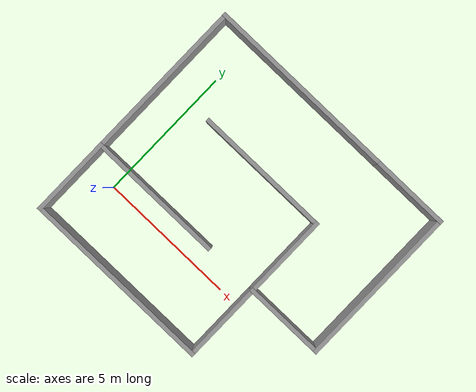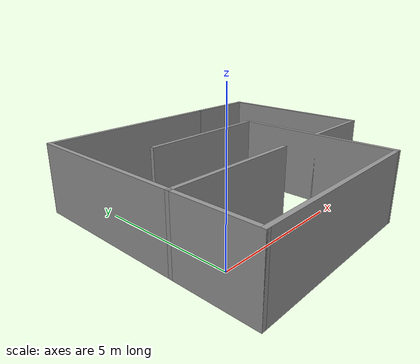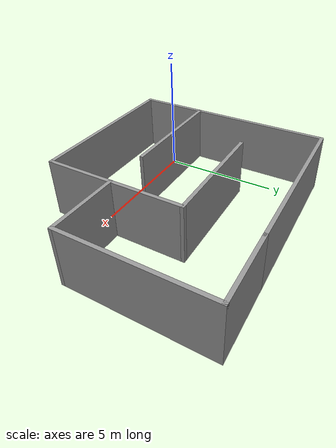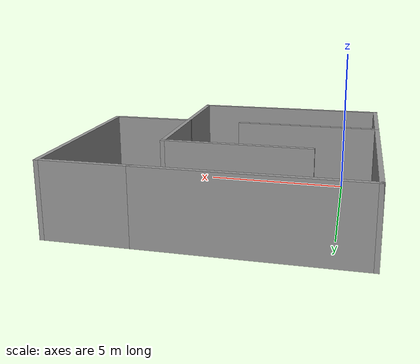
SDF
<?xml version='1.0'?>
<sdf version='1.7'>
  <model name='EgounaWorld'>
    <pose>3.70731 2.32395 0 0 -0 0</pose>
    <link name='Wall_0'>
      <collision name='Wall_0_Collision'>
        <geometry>
          <box>
            <size>3 0.15 2.5</size>
          </box>
        </geometry>
        <pose>0 0 1.25 0 -0 0</pose>
      </collision>
      <visual name='Wall_0_Visual'>
        <pose>0 0 1.25 0 -0 0</pose>
        <geometry>
          <box>
            <size>3 0.15 2.5</size>
          </box>
        </geometry>
        <material>
          <script>
            <uri>file://media/materials/scripts/gazebo.material</uri>
            <name>Gazebo/Grey</name>
          </script>
          <ambient>1 1 1 1</ambient>
        </material>
        <meta>
          <layer>0</layer>
        </meta>
      </visual>
      <pose>-4.85 -2.925 0 0 -0 -1.5708</pose>
    </link>
    <link name='Wall_10'>
      <collision name='Wall_10_Collision'>
        <geometry>
          <box>
            <size>7 0.15 2.5</size>
          </box>
        </geometry>
        <pose>0 0 1.25 0 -0 0</pose>
      </collision>
      <visual name='Wall_10_Visual'>
        <pose>0 0 1.25 0 -0 0</pose>
        <geometry>
          <box>
            <size>7 0.15 2.5</size>
          </box>
        </geometry>
        <material>
          <script>
            <uri>file://media/materials/scripts/gazebo.material</uri>
            <name>Gazebo/Grey</name>
          </script>
          <ambient>1 1 1 1</ambient>
        </material>
        <meta>
          <layer>0</layer>
        </meta>
      </visual>
      <pose>-1.425 4.35 0 0 -0 0</pose>
    </link>
    <link name='Wall_19'>
      <collision name='Wall_19_Collision'>
        <geometry>
          <box>
            <size>3 0.15 2.5</size>
          </box>
        </geometry>
        <pose>0 0 1.25 0 -0 0</pose>
      </collision>
      <visual name='Wall_19_Visual'>
        <pose>0 0 1.25 0 -0 0</pose>
        <geometry>
          <box>
            <size>3 0.15 2.5</size>
          </box>
        </geometry>
        <material>
          <script>
            <uri>file://media/materials/scripts/gazebo.material</uri>
            <name>Gazebo/Grey</name>
          </script>
          <ambient>1 1 1 1</ambient>
        </material>
        <meta>
          <layer>0</layer>
        </meta>
      </visual>
      <pose>3.425 4.35 0 0 -0 0</pose>
    </link>
    <link name='Wall_20'>
      <collision name='Wall_20_Collision'>
        <geometry>
          <box>
            <size>6 0.15 2.5</size>
          </box>
        </geometry>
        <pose>0 0 1.25 0 -0 0</pose>
      </collision>
      <visual name='Wall_20_Visual'>
        <pose>0 0 1.25 0 -0 0</pose>
        <geometry>
          <box>
            <size>6 0.15 2.5</size>
          </box>
        </geometry>
        <material>
          <script>
            <uri>file://media/materials/scripts/gazebo.material</uri>
            <name>Gazebo/Grey</name>
          </script>
          <ambient>1 1 1 1</ambient>
        </material>
        <meta>
          <layer>0</layer>
        </meta>
      </visual>
      <pose>4.85 1.425 0 0 -0 -1.5708</pose>
    </link>
    <link name='Wall_21'>
      <collision name='Wall_21_Collision'>
        <geometry>
          <box>
            <size>3 0.15 2.5</size>
          </box>
        </geometry>
        <pose>0 0 1.25 0 -0 0</pose>
      </collision>
      <visual name='Wall_21_Visual'>
        <pose>0 0 1.25 0 -0 0</pose>
        <geometry>
          <box>
            <size>3 0.15 2.5</size>
          </box>
        </geometry>
        <material>
          <script>
            <uri>file://media/materials/scripts/gazebo.material</uri>
            <name>Gazebo/Grey</name>
          </script>
          <ambient>1 1 1 1</ambient>
        </material>
        <meta>
          <layer>0</layer>
        </meta>
      </visual>
      <pose>3.425 -1.5 0 0 -0 3.14159</pose>
    </link>
    <link name='Wall_3'>
      <collision name='Wall_3_Collision'>
        <geometry>
          <box>
            <size>5 0.15 2.5</size>
          </box>
        </geometry>
        <pose>0 0 1.25 0 -0 0</pose>
      </collision>
      <visual name='Wall_3_Visual'>
        <pose>0 0 1.25 0 -0 0</pose>
        <geometry>
          <box>
            <size>5 0.15 2.5</size>
          </box>
        </geometry>
        <material>
          <script>
            <uri>file://media/materials/scripts/gazebo.material</uri>
            <name>Gazebo/Grey</name>
          </script>
          <ambient>1 1 1 1</ambient>
        </material>
        <meta>
          <layer>0</layer>
        </meta>
      </visual>
      <pose>-2.425 -1.5 0 0 -0 0</pose>
    </link>
    <link name='Wall_5'>
      <collision name='Wall_5_Collision'>
        <geometry>
          <box>
            <size>7 0.15 2.5</size>
          </box>
        </geometry>
        <pose>0 0 1.25 0 -0 0</pose>
      </collision>
      <visual name='Wall_5_Visual'>
        <pose>0 0 1.25 0 -0 0</pose>
        <geometry>
          <box>
            <size>7 0.15 2.5</size>
          </box>
        </geometry>
        <material>
          <script>
            <uri>file://media/materials/scripts/gazebo.material</uri>
            <name>Gazebo/Grey</name>
          </script>
          <ambient>1 1 1 1</ambient>
        </material>
        <meta>
          <layer>0</layer>
        </meta>
      </visual>
      <pose>-1.425 -4.35 0 0 -0 0</pose>
    </link>
    <link name='Wall_6'>
      <collision name='Wall_6_Collision'>
        <geometry>
          <box>
            <size>6 0.15 2.5</size>
          </box>
        </geometry>
        <pose>0 0 1.25 0 -0 0</pose>
      </collision>
      <visual name='Wall_6_Visual'>
        <pose>0 0 1.25 0 -0 0</pose>
        <geometry>
          <box>
            <size>6 0.15 2.5</size>
          </box>
        </geometry>
        <material>
          <script>
            <uri>file://media/materials/scripts/gazebo.material</uri>
            <name>Gazebo/Grey</name>
          </script>
          <ambient>1 1 1 1</ambient>
        </material>
        <meta>
          <layer>0</layer>
        </meta>
      </visual>
      <pose>2 -1.425 0 0 -0 1.5708</pose>
    </link>
    <link name='Wall_7'>
      <collision name='Wall_7_Collision'>
        <geometry>
          <box>
            <size>5 0.15 2.5</size>
          </box>
        </geometry>
        <pose>0 0 1.25 0 -0 0</pose>
      </collision>
      <visual name='Wall_7_Visual'>
        <pose>0 0 1.25 0 -0 0</pose>
        <geometry>
          <box>
            <size>5 0.15 2.5</size>
          </box>
        </geometry>
        <material>
          <script>
            <uri>file://media/materials/scripts/gazebo.material</uri>
            <name>Gazebo/Grey</name>
          </script>
          <ambient>1 1 1 1</ambient>
        </material>
        <meta>
          <layer>0</layer>
        </meta>
      </visual>
      <pose>-0.425 1.5 0 0 -0 3.14159</pose>
    </link>
    <link name='Wall_9'>
      <collision name='Wall_9_Collision'>
        <geometry>
          <box>
            <size>6 0.15 2.5</size>
          </box>
        </geometry>
        <pose>0 0 1.25 0 -0 0</pose>
      </collision>
      <visual name='Wall_9_Visual'>
        <pose>0 0 1.25 0 -0 0</pose>
        <geometry>
          <box>
            <size>6 0.15 2.5</size>
          </box>
        </geometry>
        <material>
          <script>
            <uri>file://media/materials/scripts/gazebo.material</uri>
            <name>Gazebo/Grey</name>
          </script>
          <ambient>1 1 1 1</ambient>
        </material>
        <meta>
          <layer>0</layer>
        </meta>
      </visual>
      <pose>-4.85 1.425 0 0 -0 1.5708</pose>
    </link>
    <static>1</static>
  </model>
</sdf>
